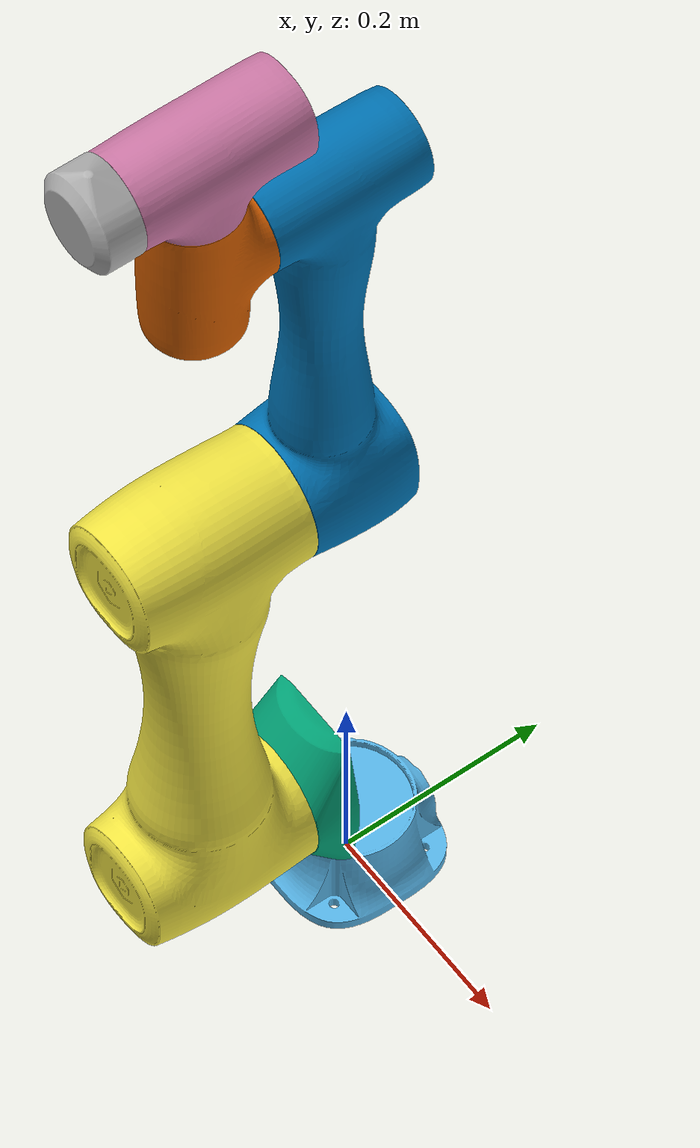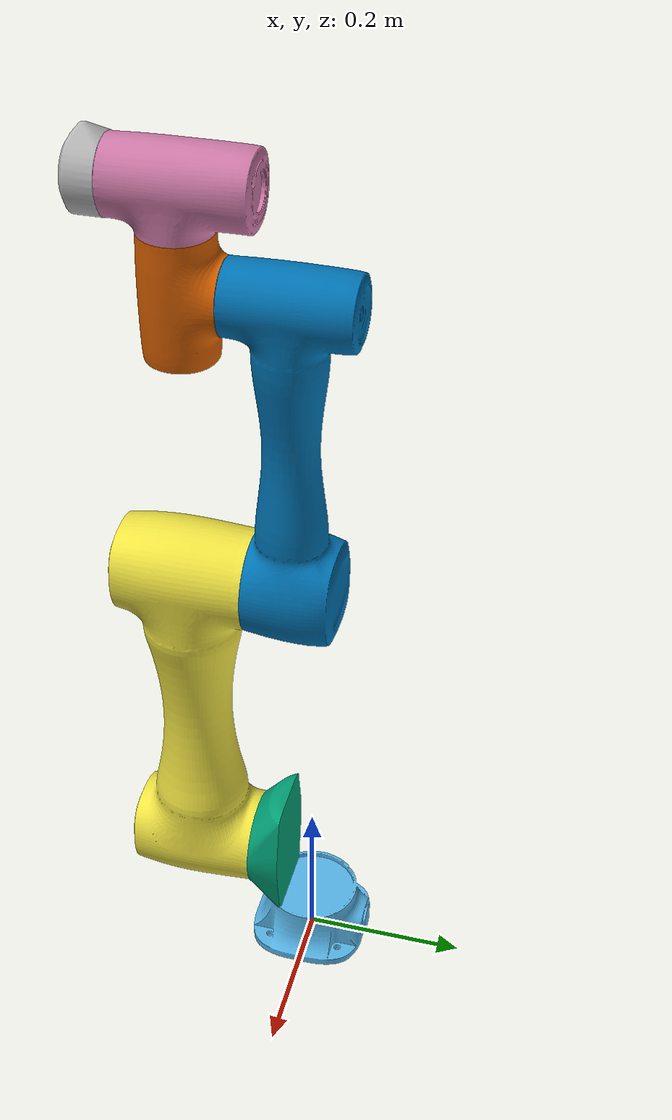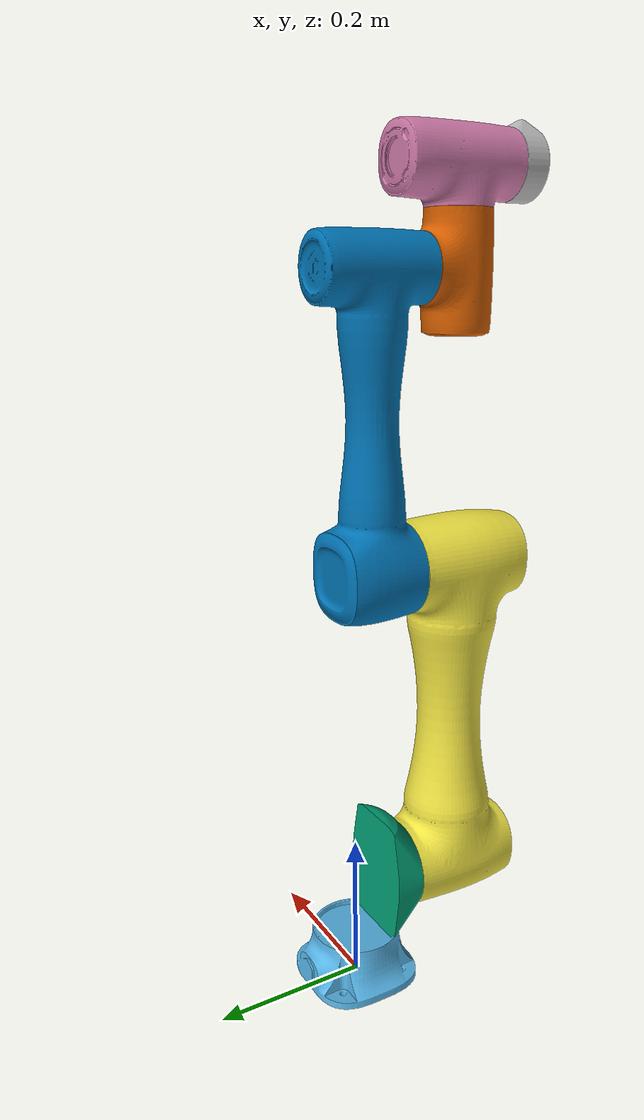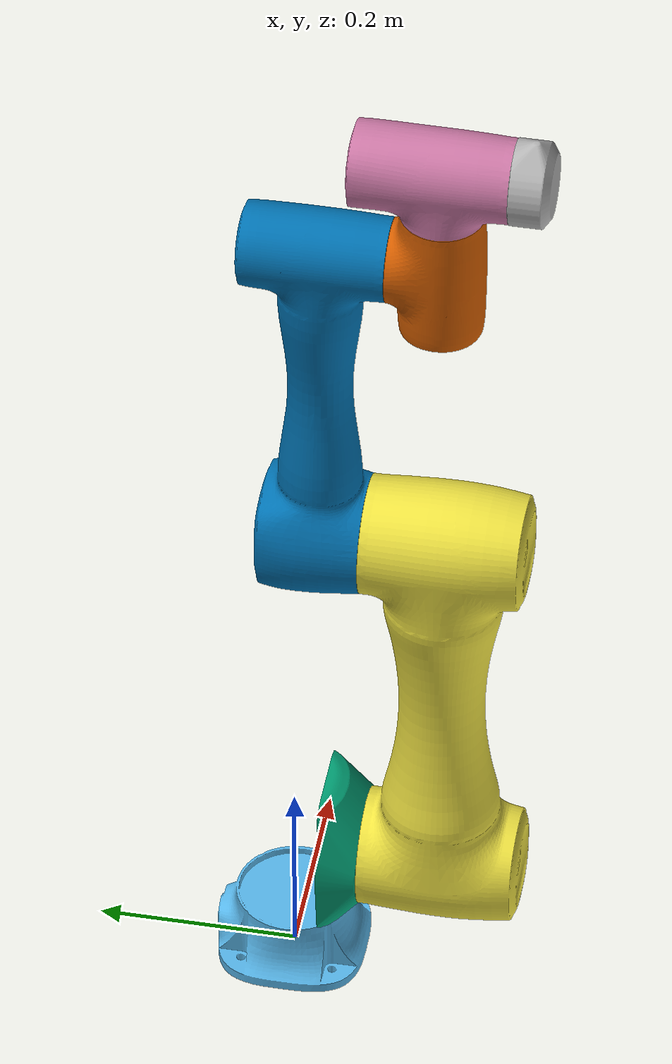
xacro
<?xml version="1.0"?>
<robot xmlns:xacro="http://www.ros.org/wiki/xacro" name="CR5">
  <xacro:arg name="ros2_control_hardware_type" default="mock_components"/>

  <link name="world"/>

  <joint name="world_fixed" type="fixed">
    <parent link="world"/>
    <child link="base_link"/>
    <origin/>
  </joint>

  <xacro:include filename="$(find cr5_description)/xacro/robot.xacro"/>
  <xacro:include filename="$(find cr5_description)/xacro/ros2_control/cr5.ros2_control.xacro"/>
  <xacro:cr5_system name="" ros2_control_hardware_type="$(arg ros2_control_hardware_type)"/>

  <xacro:arg name="gazebo" default="false"/>
  <xacro:if value="$(arg gazebo)">
    <gazebo>
      <plugin filename="gz_ros2_control-system" name="gz_ros2_control::GazeboSimROS2ControlPlugin">
        <parameters>$(find cr5_description)/config/ros2_control/ros2_controllers.yaml</parameters>
      </plugin>
    </gazebo>
  </xacro:if>
</robot>

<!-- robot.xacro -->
<robot name="DobotCR5" xmlns:xacro="http://www.ros.org/wiki/xacro">

  <xacro:arg name="type" default="empty"/>
  <xacro:arg name="collider" default="convex"/>

  <xacro:include filename="$(find cr5_description)/xacro/arm.xacro"/>

  <xacro:CR5 name="" collider="$(arg collider)"/>

  <xacro:if value="${'$(arg type)' != 'empty'}">
    <joint name="gripper_fix" type="fixed">
      <parent link="Link6"/>
      <child link="gripper_base"/>
    </joint>
  </xacro:if>

  <!-- 根据type参数决定使用哪种夹爪 -->
  <xacro:if value="${'$(arg type)' == 'robotiq85'}">
    <xacro:include filename="$(find robotiq_description)/xacro/2F85.xacro"/>
    <xacro:Robotiq85 name=""/>
  </xacro:if>

  <xacro:if value="${'$(arg type)' == 'AG2F90-C'}">
    <xacro:include filename="$(find changingtek_description)/xacro/AG2F90-C.xacro"/>
    <xacro:AG2F90-C name=""/>
  </xacro:if>

  <xacro:if value="${'$(arg type)' == 'AG2F120S'}">
    <xacro:include filename="$(find changingtek_description)/xacro/AG2F120S.xacro"/>
    <xacro:AG2F120S name=""/>
  </xacro:if>
</robot>

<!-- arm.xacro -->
<robot name="cr5_robot" xmlns:xacro="http://ros.org/wiki/xacro">
	<xacro:macro name="CR5" params="name collider:=convex">

		<xacro:property name="prefix" value="${name + '_' if name else ''}"/>

		<link name="base_link">
			<inertial>
				<origin xyz="-8.0961E-06 0.0019103 0.028995"/>
				<mass value="0.90882"/>
				<inertia
						ixx="0.0014545"
						ixy="4.2968E-08"
						ixz="-1.8199E-07"
						iyy="0.001345"
						iyz="-6.243E-06"
						izz="0.002155"/>
			</inertial>
			<visual>
				<geometry>
					<mesh filename="file://$(find cr5_description)/meshes/visual/base_link.obj"/>
				</geometry>
			</visual>
			<xacro:if value="${collider == 'convex'}">
				<collision>
					<geometry>
						<mesh filename="file://$(find cr5_description)/meshes/collision/base_link.obj"/>
					</geometry>
				</collision>
			</xacro:if>
			<xacro:if value="${collider == 'simple'}">
				<collision>
					<origin xyz="0 0 0.05"/>
					<geometry>
						<cylinder length="0.1" radius="0.1"/>
					</geometry>
				</collision>
				<collision>
					<origin xyz="0 0 -0.025"/>
					<geometry>
						<box size="1.5 1.5 0.05"/>
					</geometry>
				</collision>
			</xacro:if>
		</link>

		<link name="Link1">
			<inertial>
				<origin xyz="-8.7268E-07 -0.0032576 -0.0076748"/>
				<mass value="1.6123"/>
				<inertia
						ixx="0.0029122"
						ixy="5.7387E-09"
						ixz="1.9945E-08"
						iyy="0.0028191"
						iyz="0.00044094"
						izz="0.0032836"/>
			</inertial>
			<visual>
				<geometry>
					<mesh filename="file://$(find cr5_description)/meshes/visual/Link1.obj"/>
				</geometry>
			</visual>
			<xacro:if value="${collider == 'convex'}">
				<collision>
					<geometry>
						<mesh filename="file://$(find cr5_description)/meshes/collision/Link1_0.obj"/>
					</geometry>
				</collision>
				<collision>
					<geometry>
						<mesh filename="file://$(find cr5_description)/meshes/collision/Link1_1.obj"/>
					</geometry>
				</collision>
			</xacro:if>
			<xacro:if value="${collider == 'simple'}">
				<collision>
					<geometry>
						<cylinder length="0.17" radius="0.08"/>
					</geometry>
				</collision>
			</xacro:if>
		</link>

		<joint name="joint1" type="revolute">
			<origin xyz="0 0 0.147"/>
			<parent link="base_link"/>
			<child link="Link1"/>
			<axis xyz="0 0 1"/>
			<limit lower="-6.28318" upper="6.28318" effort="300" velocity="3.14159"/>
		</joint>

		<link name="Link2">
			<inertial>
				<origin xyz="-0.21351 -1.3842E-06 0.14252"/>
				<mass value="5.5186"/>
				<inertia
						ixx="0.0085919"
						ixy="7.5552E-07"
						ixz="-7.8922E-07"
						iyy="0.027553"
						iyz="1.4629E-07"
						izz="0.028294"/>
			</inertial>
			<visual>
				<geometry>
					<mesh filename="file://$(find cr5_description)/meshes/visual/Link2.obj"/>
				</geometry>
			</visual>
			<xacro:if value="${collider == 'convex'}">
				<collision>
					<geometry>
						<mesh filename="file://$(find cr5_description)/meshes/collision/Link2_0.obj"/>
					</geometry>
				</collision>
				<collision>
					<geometry>
						<mesh filename="file://$(find cr5_description)/meshes/collision/Link2_1.obj"/>
					</geometry>
				</collision>
				<collision>
					<geometry>
						<mesh filename="file://$(find cr5_description)/meshes/collision/Link2_2.obj"/>
					</geometry>
				</collision>
			</xacro:if>
			<xacro:if value="${collider == 'simple'}">
				<collision>
					<origin rpy="0 0 0" xyz="0 0 0.145"/>
					<geometry>
						<cylinder length="0.18" radius="0.07"/>
					</geometry>
				</collision>
				<collision>
					<origin rpy="0 1.5708 0" xyz="-0.2 0 0.15"/>
					<geometry>
						<cylinder length="0.43" radius="0.065"/>
					</geometry>
				</collision>
				<collision>
					<origin xyz="-0.43 0 0.145"/>
					<geometry>
						<cylinder length="0.18" radius="0.07"/>
					</geometry>
				</collision>
			</xacro:if>
		</link>

		<joint name="joint2" type="revolute">
			<origin rpy="1.5708 1.5708 0"/>
			<parent link="Link1"/>
			<child link="Link2"/>
			<axis xyz="0 0 1"/>
			<limit lower="-6.28318" upper="6.28318" effort="300" velocity="3.14159"/>
		</joint>

		<link name="Link3">
			<inertial>
				<origin xyz="-0.15231 -1.4079E-07 0.022693"/>
				<mass value="2.8536"/>
				<inertia
						ixx="0.0032608"
						ixy="-3.2147E-10"
						ixz="0.00012363"
						iyy="0.0092967"
						iyz="2.9478E-10"
						izz="0.0095552"/>
			</inertial>
			<visual>
				<geometry>
					<mesh filename="file://$(find cr5_description)/meshes/visual/Link3.obj"/>
				</geometry>
			</visual>
			<xacro:if value="${collider == 'convex'}">
				<collision>
					<geometry>
						<mesh filename="file://$(find cr5_description)/meshes/collision/Link3_0.obj"/>
					</geometry>
				</collision>
				<collision>
					<geometry>
						<mesh filename="file://$(find cr5_description)/meshes/collision/Link3_1.obj"/>
					</geometry>
				</collision>
				<collision>
					<geometry>
						<mesh filename="file://$(find cr5_description)/meshes/collision/Link3_2.obj"/>
					</geometry>
				</collision>
			</xacro:if>
			<xacro:if value="${collider == 'simple'}">
				<collision>
					<origin xyz="0 0 0.02"/>
					<geometry>
						<cylinder length="0.15" radius="0.07"/>
					</geometry>
				</collision>
				<collision>
					<origin rpy="0 1.5708 0" xyz="-0.2 0 0.03"/>
					<geometry>
						<cylinder length="0.26" radius="0.05"/>
					</geometry>
				</collision>
				<collision>
					<origin xyz="-0.355 0 0.02"/>
					<geometry>
						<cylinder length="0.15" radius="0.05"/>
					</geometry>
				</collision>
			</xacro:if>
		</link>

		<joint name="joint3" type="revolute">
			<origin xyz="-0.427 0 0"/>
			<parent link="Link2"/>
			<child link="Link3"/>
			<axis xyz="0 0 1"/>
			<limit lower="-2.7925" upper="2.7925" effort="300" velocity="3.14159"/>
		</joint>

		<link name="Link4">
			<inertial>
				<origin xyz="-3.2386E-07 -0.002077 -0.0015548"/>
				<mass value="0.67058"/>
				<inertia
						ixx="0.00066939"
						ixy="4.1975E-10"
						ixz="-1.0734E-08"
						iyy="0.00065424"
						iyz="0.00011081"
						izz="0.00065365"/>
			</inertial>
			<visual>
				<geometry>
					<mesh filename="file://$(find cr5_description)/meshes/visual/Link4.obj"/>
				</geometry>
			</visual>
			<xacro:if value="${collider == 'convex'}">
				<collision>
					<geometry>
						<mesh filename="file://$(find cr5_description)/meshes/collision/Link4_0.obj"/>
					</geometry>
				</collision>
				<collision>
					<geometry>
						<mesh filename="file://$(find cr5_description)/meshes/collision/Link4_1.obj"/>
					</geometry>
				</collision>
			</xacro:if>
			<xacro:if value="${collider == 'simple'}">
				<collision>
					<origin rpy="1.5708 0 0"/>
					<geometry>
						<cylinder length="0.155" radius="0.055"/>
					</geometry>
				</collision>
			</xacro:if>
		</link>

		<joint name="joint4" type="revolute">
			<origin xyz="-0.357 0 0.141" rpy="0 0 -1.5708"/>
			<parent link="Link3"/>
			<child link="Link4"/>
			<axis xyz="0 0 1"/>
			<limit lower="-6.28318" upper="6.28318" effort="300" velocity="3.14159"/>
		</joint>
		<link name="Link5">
			<inertial>
				<origin xyz="-3.7738E-07 -0.0045777 -0.0012971"/>
				<mass value="0.7269"/>
				<inertia
						ixx="0.00073069"
						ixy="-5.7806E-09"
						ixz="6.7132E-09"
						iyy="0.00071195"
						iyz="-0.00011926"
						izz="0.00071391"/>
			</inertial>
			<visual>
				<geometry>
					<mesh filename="file://$(find cr5_description)/meshes/visual/Link5.obj"/>
				</geometry>
			</visual>
			<xacro:if value="${collider == 'convex'}">
				<collision>
					<geometry>
						<mesh filename="file://$(find cr5_description)/meshes/collision/Link5.obj"/>
					</geometry>
				</collision>
			</xacro:if>
			<xacro:if value="${collider == 'simple'}">
				<collision>
					<origin rpy="1.5708 0 0"/>
					<geometry>
						<cylinder length="0.18" radius="0.055"/>
					</geometry>
				</collision>
			</xacro:if>
		</link>

		<joint name="joint5" type="revolute">
			<origin xyz="0 -0.116 0" rpy="1.5708 0 0"/>
			<parent link="Link4"/>
			<child link="Link5"/>
			<axis xyz="0 0 1"/>
			<limit lower="-6.28318" upper="6.28318" effort="300" velocity="3.14159"/>
		</joint>

		<link name="Link6">
			<inertial>
				<origin xyz="5.0777E-11 9.3774E-05 -0.019285"/>
				<mass value="0.15789"/>
				<inertia
						ixx="7.8045E-05"
						ixy="6.1582E-15"
						ixz="6.2471E-14"
						iyy="7.9168E-05"
						iyz="-1.3822E-07"
						izz="0.00012951"/>
			</inertial>
			<visual>
				<geometry>
					<mesh filename="file://$(find cr5_description)/meshes/visual/Link6.obj"/>
				</geometry>
			</visual>
			<xacro:if value="${collider == 'convex'}">
				<collision>
					<geometry>
						<mesh filename="file://$(find cr5_description)/meshes/collision/Link6.obj"/>
					</geometry>
				</collision>
			</xacro:if>
			<xacro:if value="${collider == 'simple'}">
				<collision>
					<origin xyz="0 0 0.1"/>
					<geometry>
						<box size="0.05 0.15 0.2"/>
					</geometry>
				</collision>
			</xacro:if>
		</link>

		<joint name="joint6" type="revolute">
			<origin xyz="0 0.105 0" rpy="-1.5708 0 0"/>
			<parent link="Link5"/>
			<child link="Link6"/>
			<axis xyz="0 0 1"/>
			<limit lower="-6.28318" upper="6.28318" effort="300" velocity="3.14159"/>
		</joint>
	</xacro:macro>
</robot>
